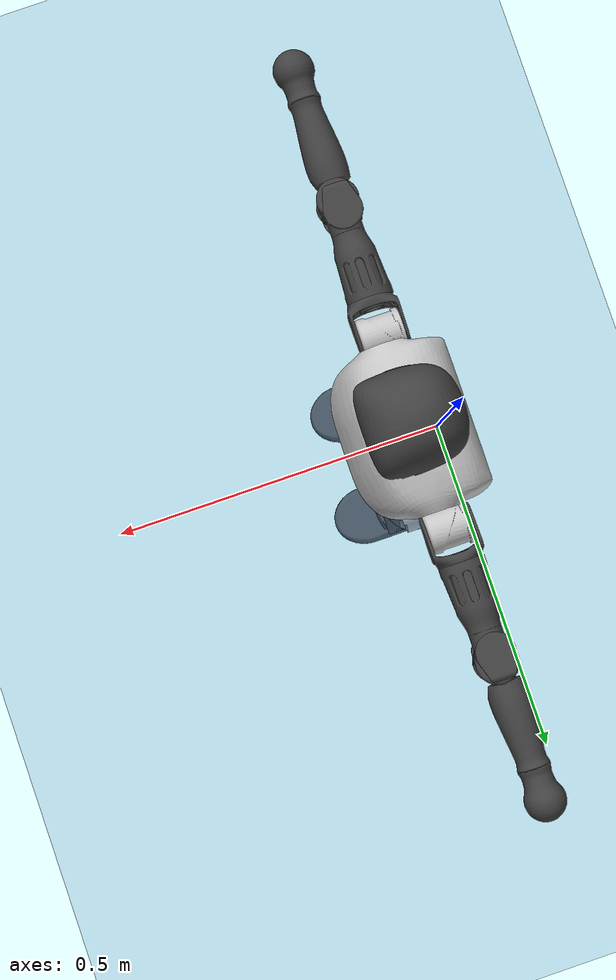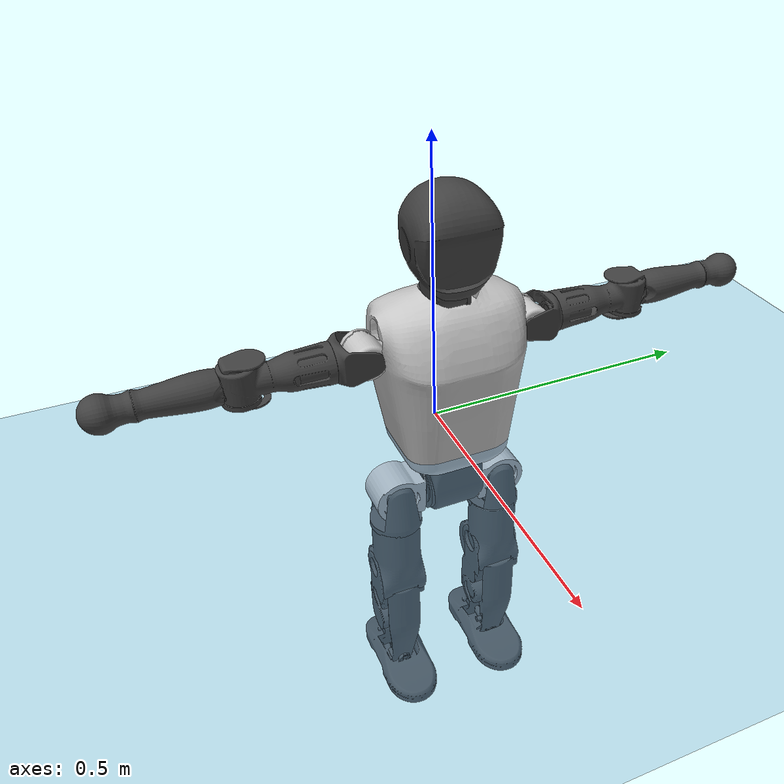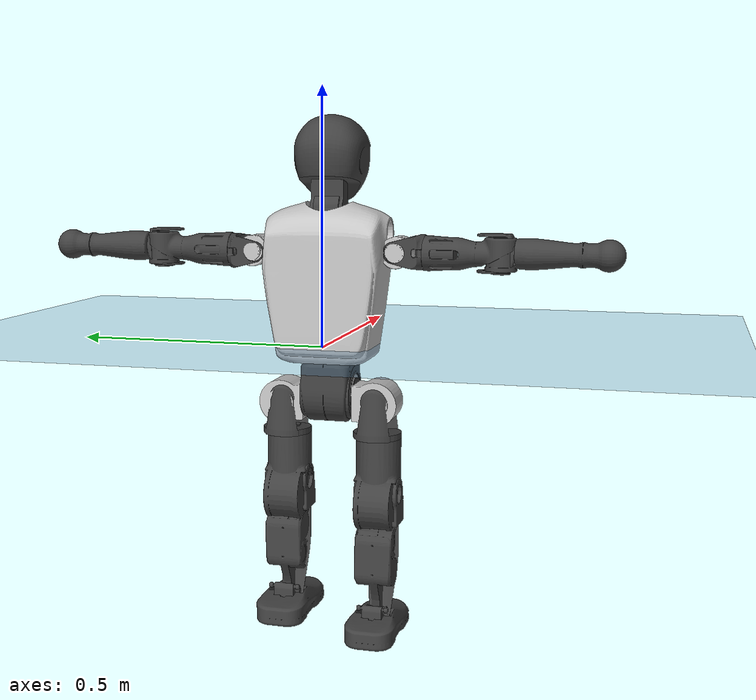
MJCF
<mujoco model="T1">
  <compiler angle="radian" assetdir="assets" balanceinertia="true" inertiafromgeom="false"/>

  <option timestep="0.005" density="1.2" viscosity="2e-05"/>

  <size nkey="1"/>

  <visual>
    <quality shadowsize="8192"/>
    <map shadowclip="0.5"/>
  </visual>

  <default>
    <default class="/">
      <joint armature="0.01" damping="0.01" frictionloss="0.1"/>
      <geom contype="0" conaffinity="0" group="1" solref="-1000 -80"/>
      <site size="0.01 0.005 0.005" group="5"/>
      <general forcelimited="true" biastype="affine" gainprm="25" biasprm="0 -25 -0.6"/>
      <default class="t1">
        <geom rgba="0.25 0.25 0.25 1"/>
        <default class="visual">
          <geom type="mesh" group="2"/>
        </default>
        <default class="collision">
          <geom group="3"/>
        </default>
        <default class="foot">
          <geom size="0.1115 0.05 0.015" type="box" condim="6" group="4" priority="1" solimp="0.015 1 0.015"/>
        </default>
        <default class="reward_collision_sphere">
          <geom group="5" rgba="1 0 0 1"/>
        </default>
      </default>
    </default>
  </default>

  <asset>
    <texture type="skybox" colorspace="auto" name="//unnamed_texture_0" builtin="gradient" rgb1="0.95 0.95 0.95" rgb2="0.95 0.95 0.95" width="100" height="600"/>
    <texture type="2d" colorspace="auto" name="texplane" builtin="checker" rgb1="0.345 0.575 0.748" rgb2="0.345 0.575 0.748" markrgb="1 1 1" width="512" height="512"/>
    <material name="MatPlane" class="/" texture="texplane" texuniform="true" texrepeat="2 2" specular="0.9"/>
    <mesh name="Trunk" class="/" file="Trunk.stl"/>
    <mesh name="H1" class="/" file="H1.stl"/>
    <mesh name="H2" class="/" file="H2.stl"/>
    <mesh name="AL1" class="/" file="AL1.stl"/>
    <mesh name="AL2" class="/" file="AL2.stl"/>
    <mesh name="AL3" class="/" file="AL3.stl"/>
    <mesh name="left_hand_link" class="/" file="left_hand_link.stl"/>
    <mesh name="AR1" class="/" file="AR1.stl"/>
    <mesh name="AR2" class="/" file="AR2.stl"/>
    <mesh name="AR3" class="/" file="AR3.stl"/>
    <mesh name="right_hand_link" class="/" file="right_hand_link.stl"/>
    <mesh name="Waist" class="/" file="Waist.stl"/>
    <mesh name="Hip_Pitch_Left" class="/" file="Hip_Pitch_Left.stl"/>
    <mesh name="Hip_Roll_Left" class="/" file="Hip_Roll_Left.stl"/>
    <mesh name="Hip_Yaw_Left" class="/" file="Hip_Yaw_Left.stl"/>
    <mesh name="Shank_Left" class="/" file="Shank_Left.stl"/>
    <mesh name="Ankle_Cross_Left" class="/" file="Ankle_Cross_Left.stl"/>
    <mesh name="left_foot_link" class="/" file="left_foot_link.stl"/>
    <mesh name="Hip_Pitch_Right" class="/" file="Hip_Pitch_Right.stl"/>
    <mesh name="Hip_Roll_Right" class="/" file="Hip_Roll_Right.stl"/>
    <mesh name="Hip_Yaw_Right" class="/" file="Hip_Yaw_Right.stl"/>
    <mesh name="Shank_Right" class="/" file="Shank_Right.stl"/>
    <mesh name="Ankle_Cross_Right" class="/" file="Ankle_Cross_Right.stl"/>
    <mesh name="right_foot_link" class="/" file="right_foot_link.stl"/>
  </asset>

  <worldbody>
    <geom name="floor" class="/" size="100 100 0.125" type="plane" group="0" material="MatPlane"/>
    <light name="toplight_shadow" class="/" pos="0 0 5" dir="0.0990148 0.0990148 -0.990148" type="directional" ambient="0.04 0.04 0.04" diffuse="0.55 0.55 0.55" specular="0.12 0.12 0.12"/>
    <light name="toplight_fill" class="/" pos="0 0 5" dir="0.0990148 0.0990148 -0.990148" type="directional" castshadow="false" ambient="0.04 0.04 0.04" diffuse="0.3 0.3 0.3" specular="0.08 0.08 0.08"/>
    <body name="trunk" childclass="t1" pos="-0.00258461 0.000772903 0.000486114" quat="1 0.00051592 -0.000210715 3.16903e-05">
      <inertial pos="0.0464426 0.00198262 0.0915924" quat="0.999937 -0.00290229 -0.0107996 -0.000950687" mass="7.4186" diaginertia="0.0360009 0.0440909 0.0227444"/>
      <joint name="//unnamed_joint_0" type="free" armature="0" damping="0" frictionloss="0"/>
      <geom name="//unnamed_geom_1" class="visual" rgba="0.76 0.76 0.76 1" mesh="Trunk"/>
      <geom name="//unnamed_geom_2" class="collision" size="0.0644941 0.0859921 0.128988" pos="0.0498479 0 0.101542" type="box"/>
      <geom name="//unnamed_geom_3" class="reward_collision_sphere" size="0.098891" pos="0.0498479 0 0.0846181"/>
      <geom name="//unnamed_geom_4" class="reward_collision_sphere" size="0.0128988" pos="0.0498479 0.0767367 0"/>
      <geom name="//unnamed_geom_5" class="reward_collision_sphere" size="0.0128988" pos="0.0498479 -0.0767367 0"/>
      <geom name="//unnamed_geom_6" class="reward_collision_sphere" size="0.0128988" pos="0.0498479 0.096598 0.152313"/>
      <geom name="//unnamed_geom_7" class="reward_collision_sphere" size="0.0128988" pos="0.0498479 -0.096598 0.152313"/>
      <site name="imu" pos="0.00242559 -0.0132797 0.0130502" size="0.00859921"/>
      <camera name="track" pos="0 -1.80557 0" quat="0.707107 0.707107 0 0" mode="trackcom"/>
      <camera name="ego_camera" pos="0.101357 0 0.355396" quat="-0.5 -0.5 0.5 0.5"/>
      <body name="H1" pos="0.0505584 -0.00121363 0.204737" quat="1 7.24907e-05 -7.44901e-05 8.42721e-05">
        <inertial pos="-0.000808067 0.000856166 0.0489967" quat="0.756507 -0.000971852 0.00299614 0.653978" mass="0.268344" diaginertia="9.5076e-05 0.000132622 6.36935e-05"/>
        <joint name="AAHead_yaw" pos="0 0 0" axis="-0.00287012 -0.0105465 0.99994" range="-1.61778 1.56974" armature="0.00857347" damping="0" frictionloss="0.0714908"/>
        <geom name="//unnamed_geom_8" class="visual" mesh="H1"/>
        <body name="H2" pos="-0.00184406 -0.000250432 0.0534458" quat="1 0.000262099 0.000282792 -8.61587e-05">
          <inertial pos="0.00754654 0.00142762 0.0829684" quat="0.989759 0.0990081 -0.0644438 -0.0801347" mass="0.399487" diaginertia="0.000790222 0.00120139 0.000737177"/>
          <joint name="Head_pitch" pos="0 0 0" axis="0.00426139 -0.999958 -0.00806697" range="-1.23165 0.366865" armature="0.00948587" damping="0.011948" frictionloss="0.0747058"/>
          <geom name="//unnamed_geom_9" class="visual" mesh="H2"/>
          <geom name="//unnamed_geom_10" class="collision" size="0.0687937" pos="0.00830798 0 0.0930799"/>
          <geom name="//unnamed_geom_11" class="reward_collision_sphere" size="0.0773929" pos="0.016616 0 0.0846181"/>
        </body>
      </body>
      <body name="AL1" pos="0.0486015 0.100056 0.182727" quat="1 0.00023652 8.86166e-05 0.000123718">
        <inertial pos="-0.0028835 0.0405964 0.00149364" quat="0.492945 0.495635 -0.512129 0.499073" mass="0.33032" diaginertia="0.000539236 0.000801886 0.000126965"/>
        <joint name="Left_Shoulder_Pitch" pos="0 0 0" axis="-0.00665663 0.999949 -0.0075928" stiffness="0.00286157" range="-3.3303 1.27099" armature="0.00901232" damping="0.00511801" frictionloss="0.0778105"/>
        <geom name="//unnamed_geom_12" class="visual" rgba="0.76 0.76 0.76 1" mesh="AL1"/>
        <body name="AL2" pos="-0.000419226 0.0425706 -0.00224832" quat="1 8.46537e-05 0.00045893 0.00029615">
          <inertial pos="0.00249827 0.032357 -0.000213595" quat="0.486148 0.511627 -0.491761 0.50997" mass="0.0978177" diaginertia="0.000155146 0.000206199 7.24524e-05"/>
          <joint name="Left_Shoulder_Roll" pos="0 0 0" axis="-0.999965 -0.00194224 0.00817928" range="-1.62383 1.77128" armature="0.00864223" damping="0.00709568" frictionloss="0.0806495"/>
          <geom name="//unnamed_geom_13" class="visual" mesh="AL2"/>
          <body name="AL3" pos="-0.000101272 0.0550964 0.00220122" quat="1 4.11927e-06 5.18629e-05 0.000184727">
            <inertial pos="0.00208391 0.0773251 -2.04017e-05" quat="0.706115 0.708029 -0.00632079 0.00751586" mass="0.650691" diaginertia="0.00520142 0.00778829 0.000269457"/>
            <joint name="Left_Elbow_Pitch" pos="0 0 0" axis="0.00185309 -0.999998 -0.000302699" range="-2.25293 2.26172" armature="0.00806042" damping="0.0131751" frictionloss="0.0768174"/>
            <geom name="//unnamed_geom_14" class="visual" mesh="AL3"/>
            <geom name="//unnamed_geom_15" class="collision" size="0.0257976 0.0644941" pos="0 0.0451393 0" quat="0.707105 0.707108 0 0" type="cylinder"/>
            <geom name="//unnamed_geom_16" class="reward_collision_sphere" size="0.0309572"/>
            <body name="left_hand_link" pos="-0.0016418 0.132474 0.00334039" quat="1 3.09201e-05 0.000654307 -0.00022867">
              <inertial pos="0.000810468 0.0979897 0.00154997" quat="0.703796 0.710362 -0.00450971 0.00609959" mass="0.204763" diaginertia="0.00327997 0.00494684 9.6244e-05"/>
              <joint name="Left_Elbow_Yaw" pos="0 0 0" axis="0.00561684 -0.00951397 0.999939" range="-2.48095 -0.0510719" armature="0.00809018" damping="0.0177609" frictionloss="0.0899467"/>
              <geom name="//unnamed_geom_17" class="visual" mesh="left_hand_link"/>
              <geom name="//unnamed_geom_18" class="collision" size="0.0257976 0.0752431" pos="0 0.117362 0" quat="0.707105 0.707108 0 0" type="cylinder"/>
              <geom name="//unnamed_geom_19" class="reward_collision_sphere" size="0.0429961"/>
              <geom name="//unnamed_geom_20" class="reward_collision_sphere" size="0.0300972" pos="0 0.0993064 0"/>
              <geom name="//unnamed_geom_21" class="reward_collision_sphere" size="0.0300972" pos="0 0.194099 0"/>
            </body>
          </body>
        </body>
      </body>
      <body name="AR1" pos="0.0493876 -0.0932121 0.183884" quat="0.999999 0.000281213 -0.000504897 -0.000979058">
        <inertial pos="-0.0018095 -0.040003 -0.00221185" quat="0.498271 0.499019 -0.501903 0.500799" mass="0.329984" diaginertia="0.000526942 0.000776846 0.000123905"/>
        <joint name="Right_Shoulder_Pitch" pos="0 0 0" axis="-0.00461286 -0.999954 -0.00836083" range="-1.22285 3.30349" armature="0.00973671" damping="0.00985322" frictionloss="0.0865886"/>
        <geom name="//unnamed_geom_22" class="visual" rgba="0.76 0.76 0.76 1" mesh="AR1"/>
        <body name="AR2" pos="-0.000144364 -0.0438036 0.000754371" quat="1 -6.40938e-05 0.000266861 -0.000735025">
          <inertial pos="0.00151073 -0.0352127 -0.00130667" quat="0.520419 0.483839 -0.510028 0.484703" mass="0.0999576" diaginertia="0.000150266 0.000198353 7.64078e-05"/>
          <joint name="Right_Shoulder_Roll" pos="0 0 0" axis="-0.999893 -0.01409 -0.00388576" range="-1.75881 1.57811" armature="0.0092935" damping="0.00901421" frictionloss="0.0788783"/>
          <geom name="//unnamed_geom_23" class="visual" mesh="AR2"/>
          <body name="AR3" pos="-0.00147198 -0.0538709 -0.00148638" quat="1 5.45391e-05 -6.26676e-05 5.74147e-05">
            <inertial pos="-0.00329202 -0.0766599 -0.000958574" quat="0.710764 0.70343 0.000647543 -0.000728195" mass="0.642476" diaginertia="0.00515321 0.00763244 0.00025758"/>
            <joint name="Right_Elbow_Pitch" pos="0 0 0" axis="0.000141282 1 -0.000219488" range="-2.31712 2.28848" armature="0.00837736" damping="0.00976997" frictionloss="0.0715645"/>
            <geom name="//unnamed_geom_24" class="visual" mesh="AR3"/>
            <geom name="//unnamed_geom_25" class="collision" size="0.0257976 0.0644941" pos="0 -0.0451393 0" quat="0.707105 0.707108 0 0" type="cylinder"/>
            <geom name="//unnamed_geom_26" class="reward_collision_sphere" size="0.0309572"/>
            <body name="right_hand_link" pos="-0.00167575 -0.130122 0.00234867" quat="1 3.54754e-05 7.06509e-05 0.000139123">
              <inertial pos="-0.000359594 -0.0960317 -0.00121666" quat="0.708606 0.705603 -0.000583805 -0.00101319" mass="0.201732" diaginertia="0.00313523 0.00472585 8.77479e-05"/>
              <joint name="Right_Elbow_Yaw" pos="0 0 0" axis="0.00349429 -0.0136588 0.999901" range="-0.0541017 2.43682" armature="0.00749156" damping="0.00961395" frictionloss="0.0938773"/>
              <geom name="//unnamed_geom_27" class="visual" mesh="right_hand_link"/>
              <geom name="//unnamed_geom_28" class="collision" size="0.0257976 0.0752431" pos="0 -0.117362 0" quat="0.707105 0.707108 0 0" type="cylinder"/>
              <geom name="//unnamed_geom_29" class="reward_collision_sphere" size="0.0429961"/>
              <geom name="//unnamed_geom_30" class="reward_collision_sphere" size="0.0300972" pos="0 -0.0993064 0"/>
              <geom name="//unnamed_geom_31" class="reward_collision_sphere" size="0.0300972" pos="0 -0.194099 0"/>
            </body>
          </body>
        </body>
      </body>
      <body name="Waist" pos="0.0553966 -0.00363589 -0.0962922" quat="0.999999 -9.10473e-05 -0.00111308 -0.00021174">
        <inertial pos="0.00371077 0.000277644 0.00539035" quat="0.983674 -0.0020351 -0.179746 -0.00853841" mass="1.61362" diaginertia="0.00202988 0.00296865 0.00192604"/>
        <joint name="Waist" pos="0 0 0" axis="-0.00308142 -0.00649106 0.999974" stiffness="0.00273918" range="-1.56561 1.62214" armature="0.00871408" damping="0.00800939" frictionloss="0.0822249"/>
        <geom name="//unnamed_geom_32" class="visual" mesh="Waist"/>
        <body name="Hip_Pitch_Left" pos="0.00222414 0.0950378 -0.00110064" quat="0.999999 0.000665515 -0.000637326 0.00109335">
          <inertial pos="-0.00100653 -0.00684509 -0.0153788" quat="0.974754 0.222422 0.0187522 0.00555236" mass="0.669018" diaginertia="0.000741501 0.00089499 0.000536615"/>
          <joint name="Left_Hip_Pitch" pos="0 0 0" axis="0.000406638 1 0.000586912" range="-1.75319 1.52419" armature="0.00938133" damping="0.0150658" frictionloss="0.0857539"/>
          <geom name="//unnamed_geom_33" class="visual" rgba="0.76 0.76 0.76 1" mesh="Hip_Pitch_Left"/>
          <body name="Hip_Roll_Left" pos="0.00426475 -0.00283084 -0.0105734" quat="1 -7.43068e-06 0.000119246 -1.08447e-05">
            <inertial pos="0.000770021 0.00276817 -0.0480166" quat="0.70702 -0.00556271 -0.00597222 0.707146" mass="0.244728" diaginertia="0.000693336 0.000929441 0.000212719"/>
            <joint name="Left_Hip_Roll" pos="0 0 0" axis="-0.999939 0.00938526 -0.00579343" range="-1.6131 0.241423" armature="0.00968623" damping="0.024533" frictionloss="0.0870668"/>
            <geom name="//unnamed_geom_34" class="visual" mesh="Hip_Roll_Left"/>
            <geom name="//unnamed_geom_35" class="reward_collision_sphere" size="0.0472957"/>
            <body name="Hip_Yaw_Left" pos="0.006295 -0.002735 -0.0663221" quat="1 -0.000602943 5.97264e-05 0.000560261">
              <inertial pos="-0.00367154 0.0016954 -0.076283" quat="0.702328 -0.0308492 -0.0207353 0.710883" mass="1.40239" diaginertia="0.0100358 0.0156418 0.00114792"/>
              <joint name="Left_Hip_Yaw" pos="0 0 0" axis="-0.00508761 -0.000325592 -0.999987" stiffness="0.00457669" range="-0.948811 0.97519" armature="0.00879378" damping="0.00976999" frictionloss="0.0827195"/>
              <geom name="//unnamed_geom_36" class="visual" mesh="Hip_Yaw_Left"/>
              <geom name="//unnamed_geom_37" class="collision" size="0.0429961 0.0687937" type="cylinder"/>
              <body name="Shank_Left" pos="-0.00475646 -0.000867575 -0.105034" quat="1 -0.000525275 -0.000351119 -0.000257225">
                <inertial pos="-0.00508298 -0.000919128 -0.104845" quat="0.997981 0.00676185 -0.0202241 0.0598181" mass="1.14492" diaginertia="0.0143268 0.0220318 0.000830279"/>
                <joint name="Left_Knee_Pitch" pos="0 0 0" axis="-0.000679704 0.999949 0.0100811" range="-0.00367466 2.31332" armature="0.00904568" damping="0.000203931" frictionloss="0.0859657"/>
                <geom name="//unnamed_geom_38" class="visual" mesh="Shank_Left"/>
                <geom name="//unnamed_geom_39" class="collision" size="0.0429961 0.0644941" pos="0 0 -0.101542" type="cylinder"/>
                <geom name="//unnamed_geom_40" class="reward_collision_sphere" size="0.0558949"/>
                <body name="Ankle_Cross_Left" pos="-0.0014954 -0.00144879 -0.240825" quat="1 0.000206201 3.37503e-05 -0.000936106">
                  <inertial pos="0.000397702 0.00261487 -0.00494902" quat="0.44481 0.549908 0.550854 0.443063" mass="0.046751" diaginertia="1.11108e-05 1.5177e-05 5.02377e-06"/>
                  <joint name="Left_Ankle_Pitch" pos="0 0 0" axis="0.00118357 0.999997 0.00197009" range="-0.877562 0.348216" armature="0.00739399" damping="0.00391433" frictionloss="0.0858383"/>
                  <geom name="//unnamed_geom_41" class="visual" mesh="Ankle_Cross_Left"/>
                  <body name="left_foot_link" pos="-0.00290377 -0.00100331 -0.00946526" quat="0.999999 -0.000304008 0.000771669 -0.00151109">
                    <inertial pos="-0.000520532 -0.00166024 -0.00945493" quat="0.00414177 0.617348 -0.00421094 0.786668" mass="0.418635" diaginertia="0.00100565 0.00140139 0.000948685"/>
                    <joint name="Left_Ankle_Roll" pos="0 0 0" axis="-0.999881 -0.0116988 0.0100986" stiffness="0.000726328" range="-0.393628 0.464273" armature="0.00822104" damping="0.0066154" frictionloss="0.0751892"/>
                    <geom name="//unnamed_geom_42" class="visual" mesh="left_foot_link"/>
                    <geom name="left_foot" class="foot" size="0.103362 0.0466252 0.011869" pos="0.00830798 0 -0.0126927"/>
                    <geom name="//unnamed_geom_44" class="reward_collision_sphere" size="0.0447159" pos="0.00830798 0 -0.0126927"/>
                    <geom name="//unnamed_geom_45" class="reward_collision_sphere" size="0.0257976" pos="0.0789258 -0.0207641 -0.0126927"/>
                    <geom name="//unnamed_geom_46" class="reward_collision_sphere" size="0.0257976" pos="-0.0581559 -0.0207641 -0.0126927"/>
                    <site name="left_foot" class="foot" pos="0.00830798 0 -0.0126927" size="0.00859921"/>
                  </body>
                </body>
              </body>
            </body>
          </body>
        </body>
        <body name="Hip_Pitch_Right" pos="-0.00494352 -0.0975859 0.00362379" quat="1 2.61649e-05 6.01128e-05 -0.000143776">
          <inertial pos="0.00253658 0.00791124 -0.0174751" quat="0.971356 -0.236665 0.0210759 0.00373178" mass="0.652605" diaginertia="0.000714172 0.000880552 0.000553306"/>
          <joint name="Right_Hip_Pitch" pos="0 0 0" axis="0.00893704 -0.999958 -0.00212642" range="-1.62017 1.77228" armature="0.00750363" damping="0.0175532" frictionloss="0.0970134"/>
          <geom name="//unnamed_geom_47" class="visual" rgba="0.76 0.76 0.76 1" mesh="Hip_Pitch_Right"/>
          <body name="Hip_Roll_Right" pos="-0.00163783 -0.000132818 -0.0134399" quat="1 4.68547e-05 -0.000294393 -0.000761475">
            <inertial pos="0.000206561 0.00235989 -0.0445187" quat="0.707252 -0.00925982 -0.00513473 0.706882" mass="0.247142" diaginertia="0.000656602 0.000860666 0.00021941"/>
            <joint name="Right_Hip_Roll" pos="0 0 0" axis="-0.99999 0.00402462 -0.0017836" range="-0.239373 1.56903" armature="0.00873186" damping="0.0200852" frictionloss="0.0899583"/>
            <geom name="//unnamed_geom_48" class="visual" mesh="Hip_Roll_Right"/>
            <geom name="//unnamed_geom_49" class="reward_collision_sphere" size="0.0472957"/>
            <body name="Hip_Yaw_Right" pos="0.00283214 -0.00214966 -0.0733124" quat="1 5.95245e-05 9.96717e-05 3.11884e-05">
              <inertial pos="-0.00672157 -0.00218918 -0.0740691" quat="0.712637 -0.0307433 -0.0351398 0.699978" mass="1.36389" diaginertia="0.00974985 0.0145243 0.0010701"/>
              <joint name="Right_Hip_Yaw" pos="0 0 0" axis="-0.000936361 0.00214278 -0.999997" range="-0.981399 1.0317" armature="0.00939252" damping="0" frictionloss="0.0744628"/>
              <geom name="//unnamed_geom_50" class="visual" mesh="Hip_Yaw_Right"/>
              <geom name="//unnamed_geom_51" class="collision" size="0.0429961 0.0687937" type="cylinder"/>
              <body name="Shank_Right" pos="-0.0107857 -0.00196221 -0.113939" quat="0.999999 -0.000890116 0.00086215 -0.000467925">
                <inertial pos="-0.00624415 0.000339218 -0.102983" quat="0.99926 0.00171893 -0.0234337 -0.0304398" mass="1.13081" diaginertia="0.0135083 0.0209891 0.00086873"/>
                <joint name="Right_Knee_Pitch" pos="0 0 0" axis="0.00390379 -0.999989 0.00256274" range="-2.30993 -0.0146639" armature="0.00747323" damping="0.0115916" frictionloss="0.0789097"/>
                <geom name="//unnamed_geom_52" class="visual" mesh="Shank_Right"/>
                <geom name="//unnamed_geom_53" class="collision" size="0.0429961 0.0644941" pos="0 0 -0.101542" type="cylinder"/>
                <geom name="//unnamed_geom_54" class="reward_collision_sphere" size="0.0558949"/>
                <body name="Ankle_Cross_Right" pos="0.00115007 0.00183313 -0.240507" quat="1 2.17367e-05 9.62464e-07 0.00010256">
                  <inertial pos="-0.00228619 0.00239421 -0.00692951" quat="0.442869 0.551159 0.551156 0.443077" mass="0.0454069" diaginertia="1.12475e-05 1.50904e-05 4.82235e-06"/>
                  <joint name="Right_Ankle_Pitch" pos="0 0 0" axis="-0.00166737 -0.999986 -0.00493456" range="-0.322304 0.862063" armature="0.00872416" damping="0.0175666" frictionloss="0.083061"/>
                  <geom name="//unnamed_geom_55" class="visual" mesh="Ankle_Cross_Right"/>
                  <body name="right_foot_link" pos="-0.000315922 -0.00107698 -0.0194188" quat="1 -0.000313319 -0.000185139 8.91281e-05">
                    <inertial pos="-2.16812e-05 -0.000603808 -0.00472609" quat="-0.00230813 0.619775 0.00223575 0.784773" mass="0.441239" diaginertia="0.00113152 0.00148027 0.00102018"/>
                    <joint name="Right_Ankle_Roll" pos="0 0 0" axis="-0.999941 -0.00620759 0.00890377" stiffness="0.0052969" range="-0.437106 0.401088" armature="0.010264" damping="0.022696" frictionloss="0.0891666"/>
                    <geom name="//unnamed_geom_56" class="visual" mesh="right_foot_link"/>
                    <geom name="right_foot" class="foot" size="0.0954949 0.0437175 0.0125566" pos="0.00830798 0 -0.0126927"/>
                    <geom name="//unnamed_geom_58" class="reward_collision_sphere" size="0.0343969"/>
                    <geom name="//unnamed_geom_59" class="reward_collision_sphere" size="0.0257976" pos="0.00830798 0 -0.0126927"/>
                    <geom name="//unnamed_geom_60" class="reward_collision_sphere" size="0.0257976" pos="0.0789258 0.0207641 -0.0126927"/>
                    <geom name="//unnamed_geom_61" class="reward_collision_sphere" size="0.0257976" pos="-0.0581559 0.0207641 -0.0126927"/>
                    <site name="right_foot" class="foot" pos="0.00830798 0 -0.0126927" size="0.00859921"/>
                  </body>
                </body>
              </body>
            </body>
          </body>
        </body>
      </body>
    </body>
  </worldbody>

  <contact>
    <pair class="/" geom1="floor" geom2="left_foot" name="//unnamed_contact_0"/>
    <pair class="/" geom1="floor" geom2="right_foot" name="//unnamed_contact_1"/>
  </contact>

  <actuator>
    <general name="AAHead_yaw" class="/" joint="AAHead_yaw" forcerange="-6.18756 6.18756" gainprm="20.1776" biasprm="0 -20.1776 -0.536991"/>
    <general name="Head_pitch" class="/" joint="Head_pitch" forcerange="-5.88516 5.88516" gainprm="20.1776" biasprm="0 -20.1776 -0.536991"/>
    <general name="Left_Shoulder_Pitch" class="/" joint="Left_Shoulder_Pitch" forcerange="-17.3751 17.3751" gainprm="20.1776" biasprm="0 -20.1776 -0.536991"/>
    <general name="Left_Shoulder_Roll" class="/" joint="Left_Shoulder_Roll" forcerange="-16.0571 16.0571" gainprm="20.1776" biasprm="0 -20.1776 -0.536991"/>
    <general name="Left_Elbow_Pitch" class="/" joint="Left_Elbow_Pitch" forcerange="-16.1751 16.1751" gainprm="20.1776" biasprm="0 -20.1776 -0.536991"/>
    <general name="Left_Elbow_Yaw" class="/" joint="Left_Elbow_Yaw" forcerange="-16.0707 16.0707" gainprm="20.1776" biasprm="0 -20.1776 -0.536991"/>
    <general name="Right_Shoulder_Pitch" class="/" joint="Right_Shoulder_Pitch" forcerange="-14.3526 14.3526" gainprm="20.1776" biasprm="0 -20.1776 -0.536991"/>
    <general name="Right_Shoulder_Roll" class="/" joint="Right_Shoulder_Roll" forcerange="-15.8842 15.8842" gainprm="20.1776" biasprm="0 -20.1776 -0.536991"/>
    <general name="Right_Elbow_Pitch" class="/" joint="Right_Elbow_Pitch" forcerange="-16.8163 16.8163" gainprm="20.1776" biasprm="0 -20.1776 -0.536991"/>
    <general name="Right_Elbow_Yaw" class="/" joint="Right_Elbow_Yaw" forcerange="-13.8084 13.8084" gainprm="20.1776" biasprm="0 -20.1776 -0.536991"/>
    <general name="Waist" class="/" joint="Waist" forcerange="-26.1884 26.1884" gainprm="20.1776" biasprm="0 -20.1776 -0.536991"/>
    <general name="Left_Hip_Pitch" class="/" joint="Left_Hip_Pitch" forcerange="-40.6367 40.6367" gainprm="20.1776" biasprm="0 -20.1776 -0.536991"/>
    <general name="Left_Hip_Roll" class="/" joint="Left_Hip_Roll" forcerange="-28.3531 28.3531" gainprm="20.1776" biasprm="0 -20.1776 -0.536991"/>
    <general name="Left_Hip_Yaw" class="/" joint="Left_Hip_Yaw" forcerange="-24.1208 24.1208" gainprm="20.1776" biasprm="0 -20.1776 -0.536991"/>
    <general name="Left_Knee_Pitch" class="/" joint="Left_Knee_Pitch" forcerange="-53.2587 53.2587" gainprm="20.1776" biasprm="0 -20.1776 -0.536991"/>
    <general name="Left_Ankle_Pitch" class="/" joint="Left_Ankle_Pitch" forcerange="-16.9935 16.9935" gainprm="20.1776" biasprm="0 -20.1776 -0.536991"/>
    <general name="Left_Ankle_Roll" class="/" joint="Left_Ankle_Roll" forcerange="-14.1964 14.1964" gainprm="20.1776" biasprm="0 -20.1776 -0.536991"/>
    <general name="Right_Hip_Pitch" class="/" joint="Right_Hip_Pitch" forcerange="-37.0558 37.0558" gainprm="20.1776" biasprm="0 -20.1776 -0.536991"/>
    <general name="Right_Hip_Roll" class="/" joint="Right_Hip_Roll" forcerange="-22.9295 22.9295" gainprm="20.1776" biasprm="0 -20.1776 -0.536991"/>
    <general name="Right_Hip_Yaw" class="/" joint="Right_Hip_Yaw" forcerange="-26.6265 26.6265" gainprm="20.1776" biasprm="0 -20.1776 -0.536991"/>
    <general name="Right_Knee_Pitch" class="/" joint="Right_Knee_Pitch" forcerange="-55.3326 55.3326" gainprm="20.1776" biasprm="0 -20.1776 -0.536991"/>
    <general name="Right_Ankle_Pitch" class="/" joint="Right_Ankle_Pitch" forcerange="-18.9691 18.9691" gainprm="20.1776" biasprm="0 -20.1776 -0.536991"/>
    <general name="Right_Ankle_Roll" class="/" joint="Right_Ankle_Roll" forcerange="-12.86 12.86" gainprm="20.1776" biasprm="0 -20.1776 -0.536991"/>
  </actuator>

  <sensor>
    <gyro site="imu" name="imu_angular_velocity"/>
    <velocimeter site="imu" name="imu_linear_velocity"/>
    <framelinvel objtype="site" objname="left_foot" name="left_foot_global_linear_velocity"/>
    <framelinvel objtype="site" objname="right_foot" name="right_foot_global_linear_velocity"/>
  </sensor>

  <keyframe>
    <key name="home" qpos="0 0 0.6385 1 0 0 0 0 0 0 1.4 0 -0.4 0 -1.4 0 0.4 0 -0.4 0 0 0.8 -0.4 0 0.4 0 0 -0.8 0.4 0"/>
  </keyframe>
</mujoco>
